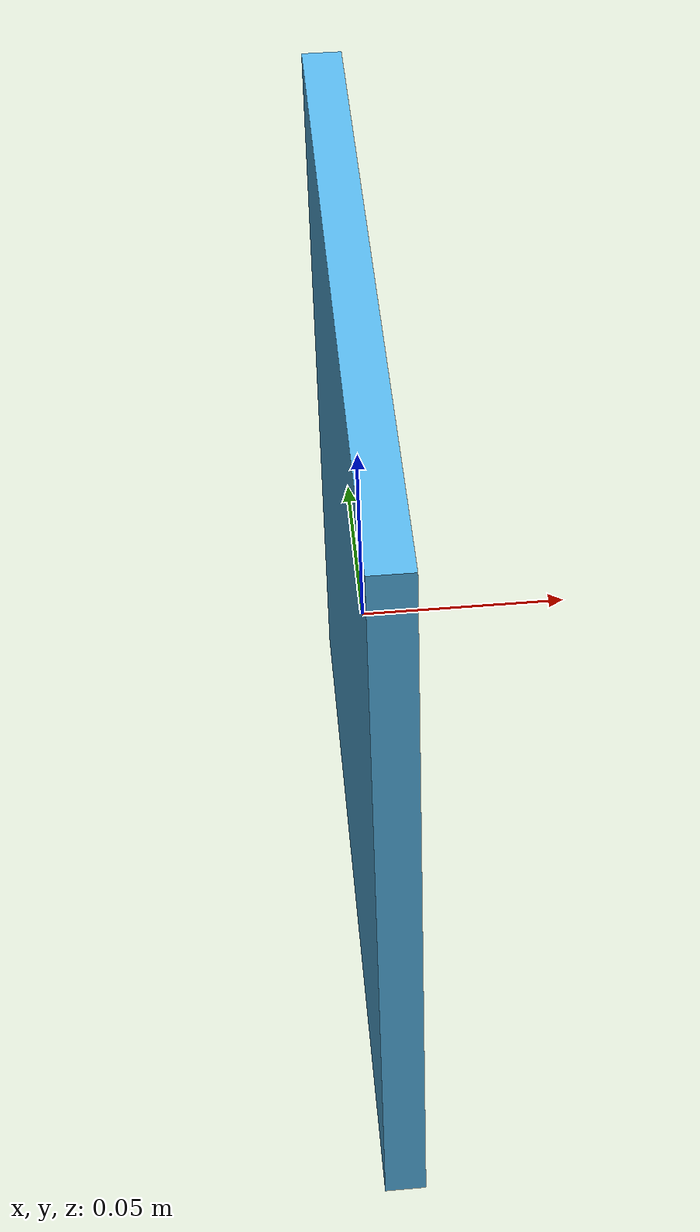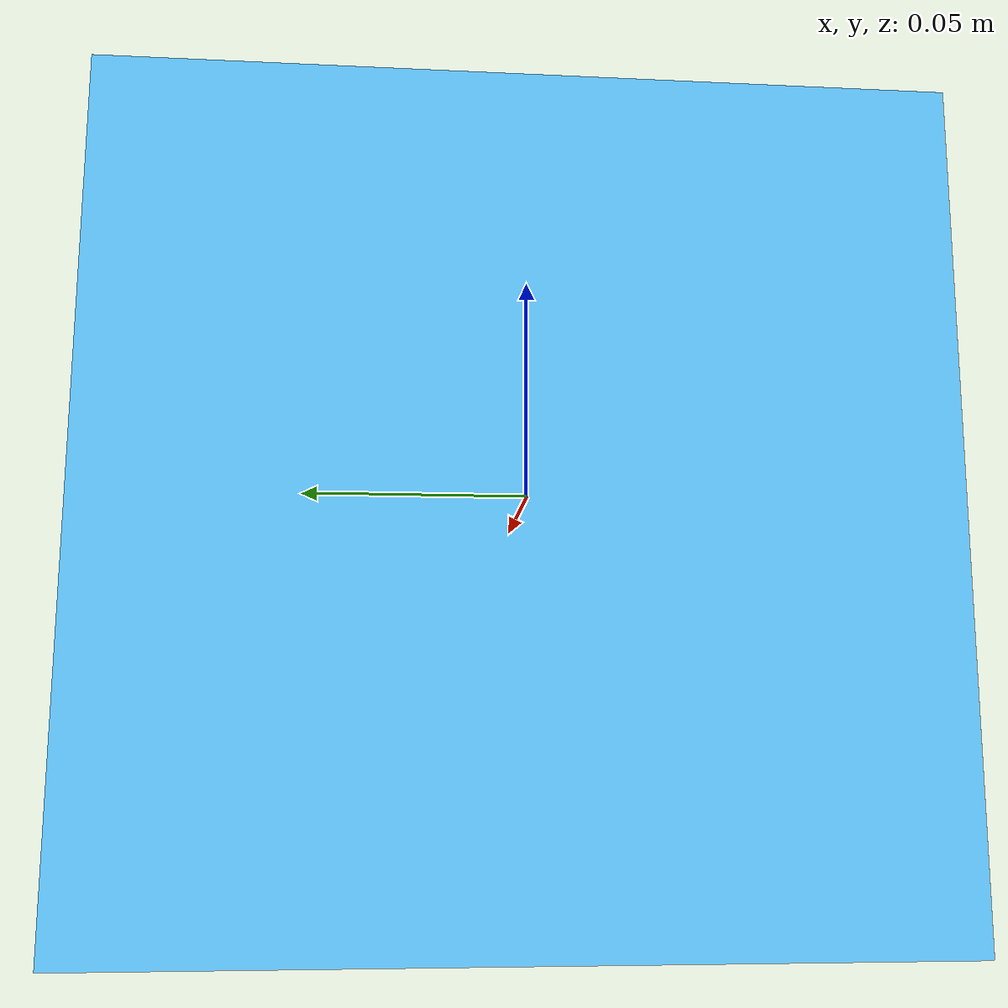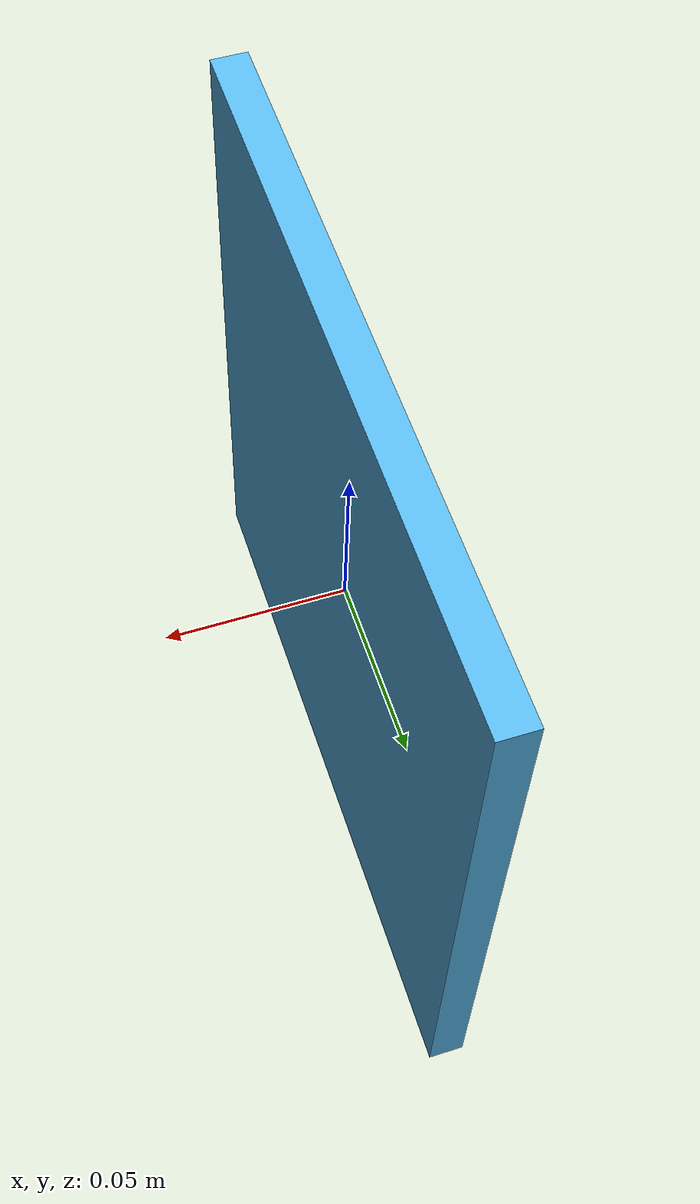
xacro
<?xml version="1.0"?>
<robot name="QRCode"
	xmlns:xi="http://www.w3.org/2001/XInclude"
	xmlns:gazebo="http://playerstage.sourceforge.net/gazebo/xmlschema/#gz"
	xmlns:model="http://playerstage.sourceforge.net/gazebo/xmlschema/#model"
	xmlns:sensor="http://playerstage.sourceforge.net/gazebo/xmlschema/#sensor"
	xmlns:body="http://playerstage.sourceforge.net/gazebo/xmlschema/#body"
	xmlns:geom="http://playerstage.sourceforge.net/gazebo/xmlschema/#geom"
	xmlns:joint="http://playerstage.sourceforge.net/gazebo/xmlschema/#joint"
	xmlns:interface="http://playerstage.sourceforge.net/gazebo/xmlschema/#interface"
	xmlns:rendering="http://playerstage.sourceforge.net/gazebo/xmlschema/#rendering"
	xmlns:renderable="http://playerstage.sourceforge.net/gazebo/xmlschema/#renderable"
	xmlns:controller="http://playerstage.sourceforge.net/gazebo/xmlschema/#controller"
	xmlns:physics="http://playerstage.sourceforge.net/gazebo/xmlschema/#physics"
>

<!-- dummy_link -->
	<link name="dummy_link">
		<inertial>
			<origin xyz="0 0 0" />
			<mass value="5.0" />
			<inertia ixx="0.0" ixy="0.0" ixz="0.0" iyy="0.0" iyz="0.0" izz="0.0" />
		</inertial>
		<visual>
			<origin xyz="0 0 0" />
			<geometry>
				<box size="0.00 0.00 0.00" />
			</geometry>
		</visual>
		<collision>
			<origin xyz="0 0 0" />
			<geometry>
				<box size="0.00 0.00 0.00" />
			</geometry>
		</collision>
	</link>

	<link name="QRCode">
		<inertial>
			<origin xyz="0 0 0" />
			<mass value="5.0" />
			<inertia ixx="0.0" ixy="0.0" ixz="0.0" iyy="0.0" iyz="0.0" izz="0.0" />
		</inertial>
		<visual>
			<origin xyz="0 0 0" />
			<geometry>
				<box size="0.01 0.2 0.2" />
			</geometry>
		</visual>
		<collision>
			<origin xyz="0 0 0" />
			<geometry>
				<box size="0.01 0.1 2.5" />
			</geometry>
		</collision>
	</link>

	<gazebo reference="QRCode">
		<material>IPA/QRCode</material>
	</gazebo>

	<joint name="joint_QRCode" type="fixed">
		<origin xyz="0 0 0" rpy="0 0 0" />
		<parent link="dummy_link" />
		<child link="QRCode" />
	</joint>

</robot>
